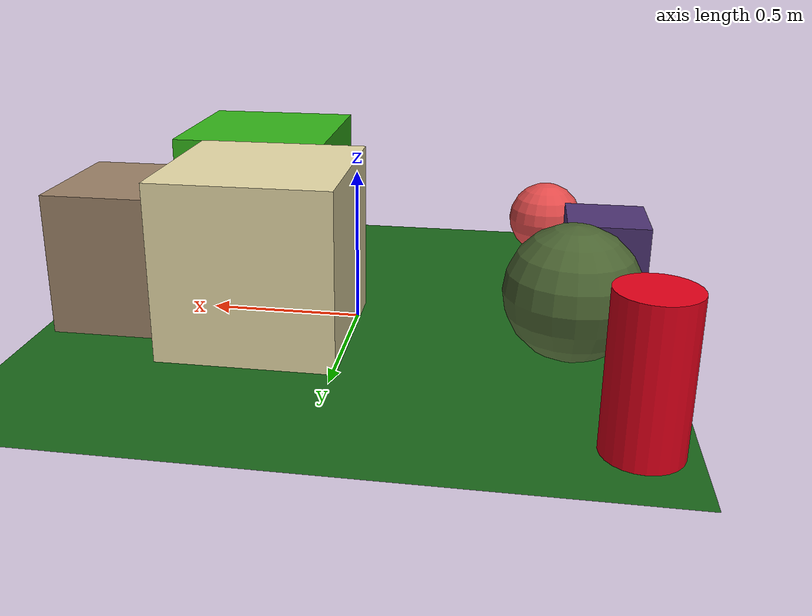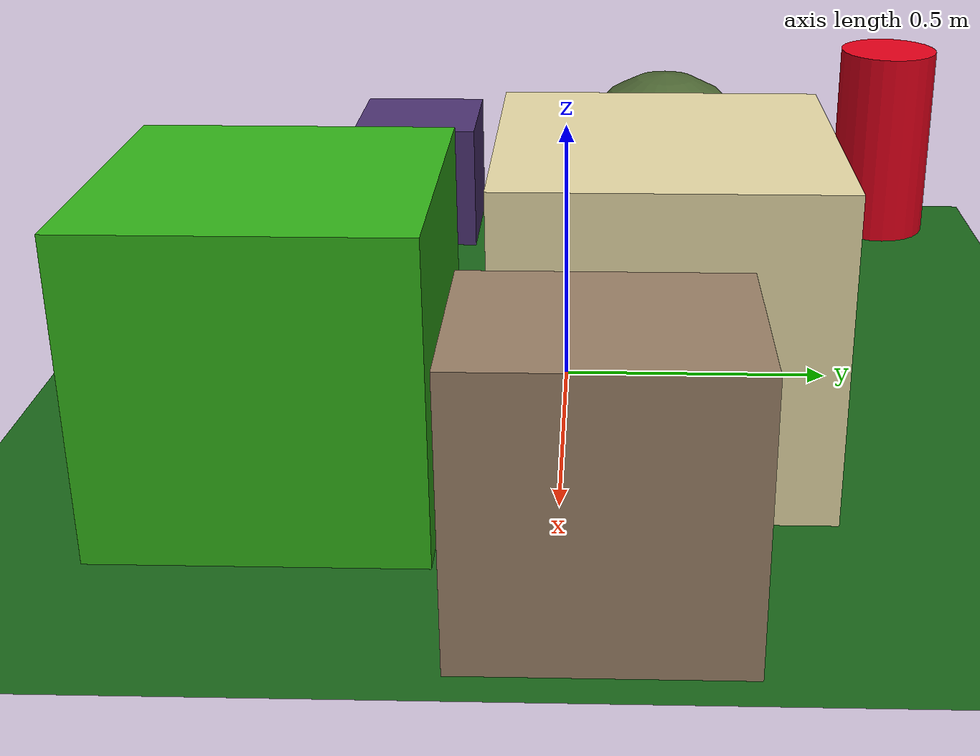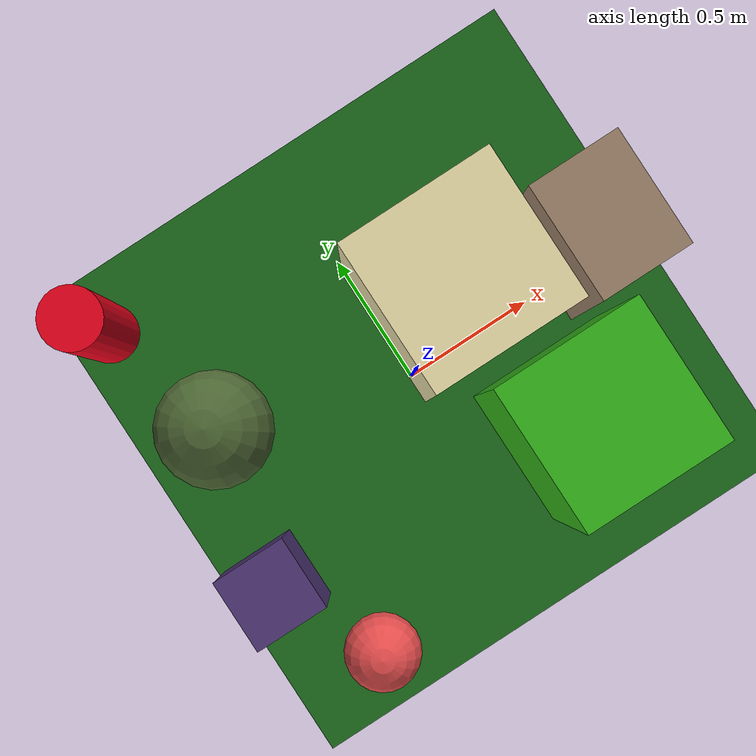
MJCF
<mujoco>
   <asset>
<texture type="skybox" builtin="gradient" rgb1="0.5 0.8 0.8" rgb2="0.8 0.7 0.1" width="256" height="256"/>
<texture name="checker_0" builtin="checker" type="2d" rgb1="0.0 0.2 0.7" rgb2="0.6 0.2 0.2" width="200" height="200"/>
<texture name="flat_1" builtin="flat" rgb1="0.9 0.0 0.1" rgb2="0.9 0.0 0.1"  width="200" height="200"/>
<texture name="flat_2" builtin="flat" rgb1="0.3 0.4 0.2" rgb2="0.3 0.4 0.2"  width="200" height="200"/>
<texture name="gradient_3" builtin="gradient" rgb1="0.9 0.9 0.4" rgb2="0.9 0.8 0.9" width="200" height="200"/>
<texture name="flat_4" builtin="flat" rgb1="0.2 0.7 0.1" rgb2="0.2 0.7 0.1"  width="200" height="200"/>
<texture name="checker_5" builtin="checker" type="2d" rgb1="0.9 0.0 0.2" rgb2="0.9 0.6 0.4" width="200" height="200"/>
<texture name="checker_6" builtin="checker" type="2d" rgb1="0.4 0.2 0.7" rgb2="0.8 0.8 0.1" width="200" height="200"/><material name="checker_0_mat" reflectance="0" texrepeat="7 7" texture="checker_0" texuniform="false" />
<material name="flat_1_mat" reflectance="0" texture="flat_1" texuniform="true"/>
<material name="flat_2_mat" reflectance="0" texture="flat_2" texuniform="true"/>
<material name="gradient_3_mat" reflectance="0" texture="gradient_3" texuniform="true"/>
<material name="flat_4_mat" reflectance="0" texture="flat_4" texuniform="true"/>
<material name="checker_5_mat" reflectance="0" texrepeat="6 6" texture="checker_5" texuniform="false" />
<material name="checker_6_mat" reflectance="0" texrepeat="2 2" texture="checker_6" texuniform="false" />
   </asset>

   <worldbody>
      <light diffuse=".9 .9 .9" pos="0 0 3" dir="0 0 -1"/>
     <geom type="plane" size="1 1 0.1" rgba="0.1 0.4 0.1 1"/>
<geom type="box" pos="-0.83 -0.37 0.14" size="0.14 0.14 0.14" material="checker_0_mat" />
<geom type="cylinder" pos="-0.85 0.74 0.22" size="0.11 0.22 0.22" material="flat_1_mat" />
<geom type="sphere" pos="-0.69 0.21 0.21" size="0.21 0.21 0.21" material="flat_2_mat" />
<geom type="box" pos="0.27 0.17 0.28" size="0.28 0.28 0.28" material="gradient_3_mat" />
<geom type="box" pos="0.42 -0.46 0.27" size="0.27 0.27 0.27" material="flat_4_mat" />
<geom type="sphere" pos="-0.63 -0.77 0.14" size="0.14 0.14 0.14" material="checker_5_mat" />
<geom type="box" pos="0.78 0.07 0.23" size="0.17 0.22 0.23" material="checker_6_mat" /><camera euler="60 0 180" fovy="60" name="camera_a" pos="0 -1.5 1"></camera>   </worldbody>
</mujoco>
